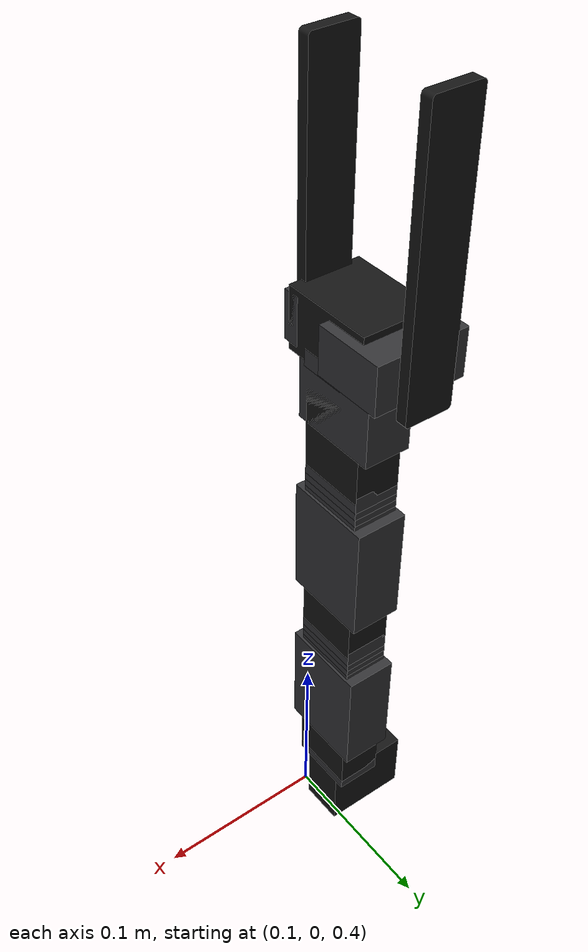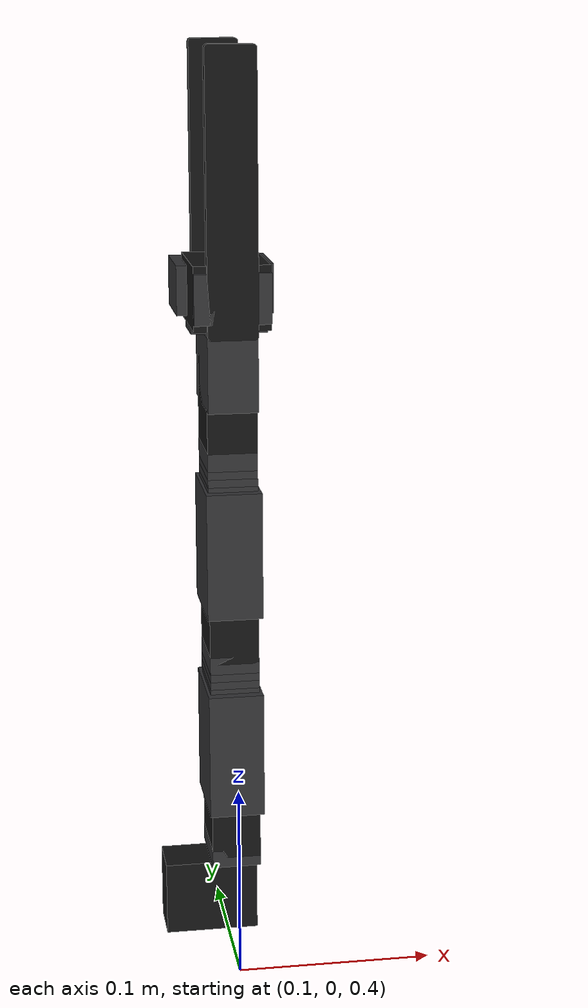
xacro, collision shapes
<?xml version="1.0"?>
<robot xmlns:xacro="http://www.ros.org/wiki/xacro" name="turtlebot_arm">
    <xacro:arg name="initial_positions_file" default="initial_positions.yaml" />

    <!-- Import turtlebot_arm urdf file -->
    <xacro:include filename="$(find arm_description)/urdf/meu_braco.urdf.xacro" />

    <!-- Import control_xacro -->
    <xacro:include filename="turtlebot_arm.ros2_control.xacro" />

    <xacro:turtlebot_arm_ros2_control name="FakeSystem" initial_positions_file="$(arg initial_positions_file)"/>

</robot>

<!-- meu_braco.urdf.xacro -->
<robot name="turtlebot_arm" xmlns:xacro="http://ros.org.wiki/xacro">

  <xacro:arg name="use_real_hardware" default="false" />

  <xacro:if value="$(arg use_real_hardware)">
    <xacro:include filename="$(find arm_description)/urdf/meu_braco.hardware_control.xacro" />
  </xacro:if>
  <xacro:unless value="$(arg use_real_hardware)">
    <xacro:include filename="$(find arm_description)/urdf/meu_braco.gazebo_control.xacro" />
  </xacro:unless>

  <xacro:property name="joints_vlimit" value="1.571"/>
  <xacro:property name="pan_llimit" value="-2.617"/>
  <xacro:property name="pan_ulimit" value="2.617"/>
  <xacro:property name="shoulder_llimit" value="-2.2"/>
  <xacro:property name="shoulder_ulimit" value="2.16"/>
  <xacro:property name="elbow_llimit" value="-2.42"/>
  <xacro:property name="elbow_ulimit" value="2.38"/>
  <xacro:property name="wrist_llimit" value="-1.72"/>
  <xacro:property name="wrist_ulimit" value="1.68"/>

  <xacro:include filename="$(find arm_description)/urdf/turtlebot_arm.xacro"/>

  <link name="base_link"/>

  <xacro:turtlebot_arm parent="base_link" color="Gray" gripper_color="Gray"
                       pincher_gripper="false" turtlebot_gripper="false"
                       crane_plus_gripper="true">
    <origin xyz="0.1 0.03 0.435"/>
  </xacro:turtlebot_arm>
</robot>

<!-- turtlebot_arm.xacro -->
<robot xmlns:xacro="http://ros.org/wiki/xacro">
  <xacro:include filename="$(find arm_description)/urdf/meu_braco.hardware.xacro"/>

  <material name="White"><color rgba="0.87 0.90 0.87 1.0"/></material>
  <material name="Black"><color rgba="0.08 0.08 0.08 1.0"/></material>
  <material name="Gray"><color rgba="0.2 0.2 0.21 1.0"/></material>
  <material name="Green"><color rgba="0.22 0.32 0.14 1.0"/></material>

  <xacro:macro name="crane_plus_gripper_only" params="parent *origin">
    <xacro:crane_bioloid_f3_fixed parent="${parent}" name="crane_plus_internal_wrist_joiner" color="Gray">
        <xacro:insert_block name="origin"/>
    </xacro:crane_bioloid_f3_fixed>
    <xacro:crane_dynamixel_ax12_fixed parent="crane_plus_internal_wrist_joiner_link" name="crane_plus_internal_gripper_servo" color="Black">
        <origin xyz="${AX12_SIDE_SCREW_OFFSET} 0 ${F3_SCREW_HEIGHT+AX12_ORIGIN_TO_SIDE_SCREW}" rpy="${M_PI/2} ${M_PI} 0"/>
    </xacro:crane_dynamixel_ax12_fixed>
    <xacro:crane_bioloid_f3_fixed parent="crane_plus_internal_gripper_servo_link" name="crane_plus_internal_fixed_finger_joiner" color="Gray">
        <origin xyz="${AX12_ORIGIN_TO_END_SCREW+F3_SCREW_HEIGHT} 0 0" rpy="-${M_PI/2} 0 ${M_PI/2}"/>
    </xacro:crane_bioloid_f3_fixed>
    <xacro:custom_finger parent="crane_plus_internal_fixed_finger_joiner_link" name="crane_plus_internal_fixed_finger" color="Black">
      <origin xyz="0 0 0" rpy="0 0 ${M_PI}"/>
    </xacro:custom_finger>
    <xacro:crane_bioloid_f2_revolute parent="crane_plus_internal_gripper_servo_link" name="crane_plus_moving_finger" color="Gray" vlimit="1.571" llimit="-0.6" ulimit="0.508">
        <origin xyz="-${AX12_ORIGIN_TO_AXLE} 0 0" rpy="-${M_PI/2} 0 -${M_PI/2}"/>
    </xacro:crane_bioloid_f2_revolute>
    <xacro:custom_finger parent="crane_plus_moving_finger_link" name="crane_plus_internal_moving_finger_plate" color="Black">
      <origin xyz="0 0 -${F2_AXLE_HEIGHT}" rpy="${M_PI} 0 0"/>
    </xacro:custom_finger>
  </xacro:macro>

  <xacro:macro name="turtlebot_arm" params="parent color pincher_gripper turtlebot_gripper crane_plus_gripper gripper_color *origin">
    <link name="arm_base_link"/>
    <joint name="arm_base_joint" type="fixed">
      <xacro:insert_block name="origin"/>
      <parent link="${parent}"/>
      <child link="arm_base_link"/>
    </joint>

    <xacro:dynamixel_AX12_fixed parent="arm_base_link" name="arm_shoulder_pan_servo">
      <origin xyz="0 0 0" rpy="${M_PI/2} 0 ${M_PI/2}"/>
    </xacro:dynamixel_AX12_fixed>
    <xacro:bioloid_F3_revolute parent="arm_shoulder_pan_servo_link" name="arm_shoulder_pan" color="${color}" vlimit="${joints_vlimit}" llimit="${pan_llimit}" ulimit="${pan_ulimit}">
      <origin xyz="0 ${AX12_WIDTH/2} 0" rpy="${-M_PI/2} ${M_PI/2} ${M_PI}"/>
    </xacro:bioloid_F3_revolute>
    <xacro:dynamixel_AX12_fixed parent="arm_shoulder_pan_link" name="arm_shoulder_lift_servo">
      <origin xyz="0 0 ${-AX12_HEIGHT-F10_HEIGHT+0.001}" rpy="0 ${M_PI} 0"/>
    </xacro:dynamixel_AX12_fixed>
    <xacro:bioloid_F4_revolute parent="arm_shoulder_lift_servo_link" name="arm_shoulder_lift" color="${color}" vlimit="${joints_vlimit}" llimit="${shoulder_llimit}" ulimit="${shoulder_ulimit}">
      <origin xyz="0 0 0" rpy="0 0 0"/>
    </xacro:bioloid_F4_revolute>
    <xacro:bioloid_F10_fixed parent="arm_shoulder_lift_link" name="arm_shoulder_F10_0" color="${color}"><origin xyz="0 0 ${F4_HEIGHT+F10_HEIGHT/2}" rpy="0 0 0"/></xacro:bioloid_F10_fixed>
    <xacro:bioloid_F10_fixed parent="arm_shoulder_F10_0_link" name="arm_shoulder_F10_1" color="${color}"><origin xyz="0 0 ${F10_HEIGHT}" rpy="0 0 0"/></xacro:bioloid_F10_fixed>
    <xacro:bioloid_F10_fixed parent="arm_shoulder_F10_1_link" name="arm_shoulder_F10_2" color="${color}"><origin xyz="0 0 ${F10_HEIGHT}" rpy="0 0 0"/></xacro:bioloid_F10_fixed>
    <xacro:bioloid_F3_fixed parent="arm_shoulder_F10_2_link" name="arm_shoulder_F3_0" color="${color}"><origin xyz="0 0 ${F10_HEIGHT/2}" rpy="0 ${M_PI} 0"/></xacro:bioloid_F3_fixed>
    <xacro:dynamixel_AX12_fixed parent="arm_shoulder_F3_0_link" name="arm_elbow_flex_servo"><origin xyz="0 0 ${-AX12_HEIGHT-F10_HEIGHT+0.001}" rpy="0 ${M_PI} 0"/></xacro:dynamixel_AX12_fixed>
    <xacro:bioloid_F4_revolute parent="arm_elbow_flex_servo_link" name="arm_elbow_flex" color="${color}" vlimit="${joints_vlimit}" llimit="${elbow_llimit}" ulimit="${elbow_ulimit}">
      <origin xyz="0 0 0" rpy="0 0 0"/>
    </xacro:bioloid_F4_revolute>
    <xacro:bioloid_F10_fixed parent="arm_elbow_flex_link" name="arm_elbow_F10_0" color="${color}"><origin xyz="0 0 ${F4_HEIGHT+F10_HEIGHT/2}" rpy="0 0 0"/></xacro:bioloid_F10_fixed>
    <xacro:bioloid_F10_fixed parent="arm_elbow_F10_0_link" name="arm_elbow_F10_1" color="${color}"><origin xyz="0 0 ${F10_HEIGHT}" rpy="0 0 0"/></xacro:bioloid_F10_fixed>
    <xacro:bioloid_F10_fixed parent="arm_elbow_F10_1_link" name="arm_elbow_F10_2" color="${color}"><origin xyz="0 0 ${F10_HEIGHT}" rpy="0 0 0"/></xacro:bioloid_F10_fixed>
    <xacro:bioloid_F3_fixed parent="arm_elbow_F10_2_link" name="arm_elbow_F3_0" color="${color}"><origin xyz="0 0 ${F10_HEIGHT/2}" rpy="0 ${M_PI} 0"/></xacro:bioloid_F3_fixed>
    <xacro:dynamixel_AX12_fixed parent="arm_elbow_F3_0_link" name="arm_wrist_flex_servo"><origin xyz="0 0 ${-AX12_HEIGHT-F10_HEIGHT+0.001}" rpy="0 ${M_PI} 0"/></xacro:dynamixel_AX12_fixed>
    <xacro:bioloid_F2_revolute parent="arm_wrist_flex_servo_link" name="arm_wrist_flex" color="${color}" vlimit="${joints_vlimit}" llimit="${wrist_llimit}" ulimit="${wrist_ulimit}">
      <origin xyz="0 0 0" rpy="0 0 0"/>
    </xacro:bioloid_F2_revolute>

    <xacro:if value="${crane_plus_gripper}">
      <xacro:crane_plus_gripper_only parent="arm_wrist_flex_link">
        <origin xyz="0 0 0.0265" rpy="0 0 ${M_PI/2}"/>
      </xacro:crane_plus_gripper_only>
    </xacro:if>
  </xacro:macro>
</robot>

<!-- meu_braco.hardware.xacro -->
<robot xmlns:xacro="http://ros.org/wiki/xacro">

  <xacro:property name="M_PI" value="3.14159"/>
  <xacro:property name="SCALE_MM" value="0.001"/>

  <xacro:property name="F10_HEIGHT" value="0.004"/>
  <xacro:property name="F4_HEIGHT" value="0.0525"/>
  <xacro:property name="F3_HEIGHT" value="0.009"/>
  <xacro:property name="AX12_HEIGHT" value="0.0385"/>
  <xacro:property name="AX12_WIDTH" value="0.038"/>
  <xacro:property name="AX12_LENGTH" value="0.050"/>
  <xacro:property name="F2_HEIGHT" value="0.0265"/>

  <xacro:property name="CRANE_AX12_WIDTH" value="0.032"/>
  <xacro:property name="CRANE_F2_HEIGHT" value="0.0375"/>
  <xacro:property name="AX12_ORIGIN_TO_SIDE_SCREW" value="0.0135"/>
  <xacro:property name="AX12_ORIGIN_OFFSET_X" value="-0.0015"/>
  <xacro:property name="AX12_SIDE_SCREW_OFFSET" value="0.0028"/>
  <xacro:property name="AX12_ORIGIN_TO_END_SCREW" value="0.024"/>
  <xacro:property name="AX12_ORIGIN_TO_AXLE" value="0.012"/>
  <xacro:property name="AX12_BODY_FULL_HEIGHT" value="0.038"/>
  <xacro:property name="F2_AXLE_HEIGHT" value="0.0265"/>
  <xacro:property name="F3_SCREW_HEIGHT" value="0.0055"/>

  <xacro:macro name="box_inertia" params="mass">
    <inertial>
      <mass value="${mass}" /><origin xyz="0 0 0" rpy="0 0 0" />
      <inertia ixx="0.0001" ixy="0" ixz="0" iyy="0.0001" iyz="0" izz="0.0001" />
    </inertial>
  </xacro:macro>

  <xacro:macro name="dynamixel_AX12_fixed" params="parent name *origin">
    <joint name="${name}_joint" type="fixed"><xacro:insert_block name="origin"/><parent link="${parent}"/><child link="${name}_link"/></joint>
    <link name="${name}_link">
      <xacro:box_inertia mass="0.055"/>
      <visual><origin xyz=" 0 0 0 " rpy="0 0 0"/><geometry><mesh filename="package://arm_description/meshes/ax12_box.stl" scale="${SCALE_MM} ${SCALE_MM} ${SCALE_MM}"/></geometry><material name="Black"/></visual>
      <collision><origin xyz="0.0 0.0 -0.01241" rpy="0 0 0"/><geometry><box size="0.025 0.038 0.04762"/></geometry></collision>
    </link>
  </xacro:macro>

  <xacro:macro name="bioloid_F10_fixed" params="parent name color *origin">
    <joint name="${name}_joint" type="fixed"><xacro:insert_block name="origin"/><parent link="${parent}"/><child link="${name}_link"/></joint>
    <link name="${name}_link">
      <xacro:box_inertia mass="0.004"/>
      <visual><origin xyz=" 0 0 0 " rpy="0 0 0"/><geometry><mesh filename="package://arm_description/meshes/F10.stl" scale="${SCALE_MM} ${SCALE_MM} ${SCALE_MM}"/></geometry><material name="${color}"/></visual>
      <collision><origin xyz="0.0 0.0 0.0" rpy="0 0 0"/><geometry><box size="0.025 0.038 0.004"/></geometry></collision>
    </link>
  </xacro:macro>

  <xacro:macro name="bioloid_F3_fixed" params="parent name color *origin">
    <joint name="${name}_joint" type="fixed"><xacro:insert_block name="origin"/><parent link="${parent}"/><child link="${name}_link"/></joint>
    <link name="${name}_link">
      <xacro:box_inertia mass="0.005"/>
      <visual><origin xyz=" 0 0 0 " rpy="0 0 0"/><geometry><mesh filename="package://arm_description/meshes/F3.stl" scale="${SCALE_MM} ${SCALE_MM} ${SCALE_MM}"/></geometry><material name="${color}"/></visual>
      <collision><origin xyz="0.0 0.0 -0.0045" rpy="0 0 0"/><geometry><box size="0.025 0.038 0.009"/></geometry></collision>
    </link>
  </xacro:macro>

  <xacro:macro name="bioloid_F3_revolute" params="parent name color llimit ulimit vlimit *origin">
    <joint name="${name}_joint" type="revolute"><xacro:insert_block name="origin"/><axis xyz="0 0 -1"/><limit effort="30" velocity="${vlimit}" lower="${llimit}" upper="${ulimit}"/><parent link="${parent}"/><child link="${name}_link"/></joint>
    <link name="${name}_link">
      <xacro:box_inertia mass="0.008"/>
      <visual><origin xyz=" 0 0 0 " rpy="0 0 0"/><geometry><mesh filename="package://arm_description/meshes/F3.stl" scale="${SCALE_MM} ${SCALE_MM} ${SCALE_MM}"/></geometry><material name="${color}"/></visual>
      <collision><origin xyz="0.0 0.0 -0.0045" rpy="0 0 0"/><geometry><box size="0.025 0.038 0.009"/></geometry></collision>
    </link>
  </xacro:macro>

  <xacro:macro name="bioloid_F2_revolute" params="parent name color llimit ulimit vlimit *origin">
    <joint name="${name}_joint" type="revolute"><xacro:insert_block name="origin"/><axis xyz="0 1 0"/><limit effort="30" velocity="${vlimit}" lower="${llimit}" upper="${ulimit}"/><parent link="${parent}"/><child link="${name}_link"/></joint>
    <link name="${name}_link">
      <xacro:box_inertia mass="0.010"/>
      <visual><origin xyz=" 0 0 0 " rpy="0 0 0"/><geometry><mesh filename="package://arm_description/meshes/F2.stl" scale="${SCALE_MM} ${SCALE_MM} ${SCALE_MM}"/></geometry><material name="${color}"/></visual>
      <collision><origin xyz="0.0 0.0 0.00775" rpy="0 0 0"/><geometry><box size="0.025 0.0485 0.0375"/></geometry></collision>
    </link>
  </xacro:macro>

  <xacro:macro name="bioloid_F4_revolute" params="parent name color llimit ulimit vlimit *origin">
    <joint name="${name}_joint" type="revolute"><xacro:insert_block name="origin"/><axis xyz="0 1 0"/><limit effort="30" velocity="${vlimit}" lower="${llimit}" upper="${ulimit}"/><parent link="${parent}"/><child link="${name}_link"/></joint>
    <link name="${name}_link">
      <xacro:box_inertia mass="0.016"/>
      <visual><origin xyz=" 0 0 0 " rpy="0 0 0"/><geometry><mesh filename="package://arm_description/meshes/F4.stl" scale="${SCALE_MM} ${SCALE_MM} ${SCALE_MM}"/></geometry><material name="${color}"/></visual>
      <collision><origin xyz="0.0 0.0 0.0215" rpy="0 0 0"/><geometry><box size="0.028 0.0485 0.065"/></geometry></collision>
    </link>
  </xacro:macro>

  <xacro:macro name="crane_dynamixel_ax12_fixed" params="parent name color *origin">
    <joint name="${name}_joint" type="fixed"><xacro:insert_block name="origin"/><parent link="${parent}"/><child link="${name}_link"/></joint>
    <link name="${name}_link">
      <xacro:box_inertia mass="0.055"/>
      <visual><origin xyz="0 0 0" rpy="-${M_PI/2} 0 0"/><geometry><mesh filename="package://arm_description/meshes/crane_plus_ax12.stl" scale="${SCALE_MM} ${SCALE_MM} ${SCALE_MM}"/></geometry><material name="${color}"/></visual>
      <collision><origin xyz="${0-AX12_ORIGIN_OFFSET_X} 0 0" rpy="0 0 0"/><geometry><box size="${AX12_LENGTH} ${CRANE_AX12_WIDTH} ${AX12_BODY_FULL_HEIGHT}"/></geometry></collision>
    </link>
  </xacro:macro>

  <xacro:macro name="crane_bioloid_f2_revolute" params="parent name color llimit ulimit vlimit *origin">
    <joint name="${name}_joint" type="revolute"><xacro:insert_block name="origin"/><axis xyz="0 -1 0"/><limit effort="30" velocity="${vlimit}" lower="${llimit}" upper="${ulimit}"/><parent link="${parent}"/><child link="${name}_link"/></joint>
    <link name="${name}_link">
      <xacro:box_inertia mass="0.01"/>
      <visual><origin xyz="0 0 0" rpy="${M_PI/2} 0 0"/><geometry><mesh filename="package://arm_description/meshes/f2.stl" scale="${SCALE_MM} ${SCALE_MM} ${SCALE_MM}"/></geometry><material name="${color}"/></visual>
      <collision><origin xyz="0 0 -${F2_AXLE_HEIGHT-CRANE_F2_HEIGHT/2}" rpy="0 0 0"/><geometry><box size="0.025 0.0485 ${CRANE_F2_HEIGHT}"/></geometry></collision>
    </link>
  </xacro:macro>

  <xacro:macro name="crane_bioloid_f3_fixed" params="parent name color *origin">
    <joint name="${name}_joint" type="fixed"><xacro:insert_block name="origin"/><parent link="${parent}"/><child link="${name}_link"/></joint>
    <link name="${name}_link">
      <xacro:box_inertia mass="0.005"/>
      <visual><origin xyz="0 0 0" rpy="${M_PI/2} 0 ${M_PI}"/><geometry><mesh filename="package://arm_description/meshes/f3.stl" scale="${SCALE_MM} ${SCALE_MM} ${SCALE_MM}"/></geometry><material name="${color}"/></visual>
      <collision><origin xyz="0 0 0.0045" rpy="0 0 0"/><geometry><box size="0.025 0.038 0.009"/></geometry></collision>
    </link>
  </xacro:macro>

  <xacro:macro name="custom_finger" params="parent name color *origin">
    <joint name="${name}_joint" type="fixed"><xacro:insert_block name="origin"/><parent link="${parent}"/><child link="${name}_link"/></joint>
    <link name="${name}_link">
      <xacro:box_inertia mass="0.01"/>
      <visual><origin xyz="0.05 0 0" rpy="0 0 0"/><geometry><mesh filename="package://arm_description/meshes/garra.stl" scale="${SCALE_MM} ${SCALE_MM} ${SCALE_MM}"/></geometry><material name="${color}"/></visual>
      <collision><origin xyz="0.05 0 0" rpy="0 0 0"/><geometry><mesh filename="package://arm_description/meshes/garra.stl" scale="${SCALE_MM} ${SCALE_MM} ${SCALE_MM}"/></geometry></collision>
    </link>
  </xacro:macro>
</robot>
